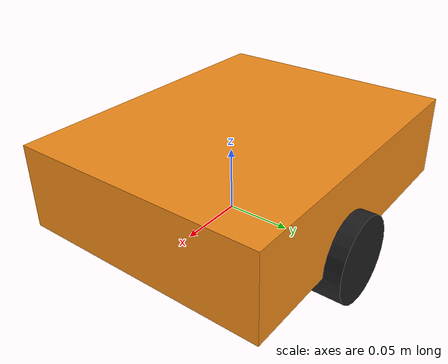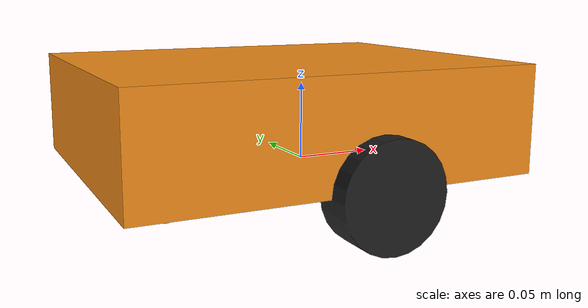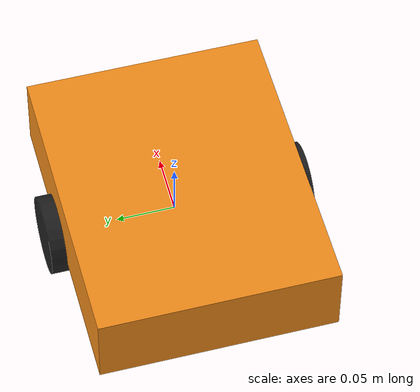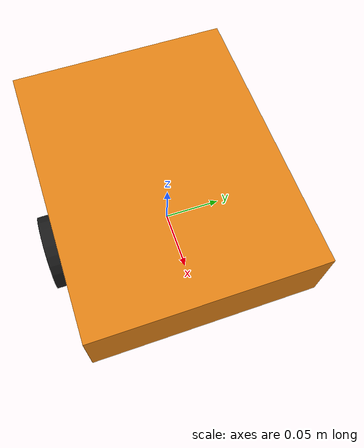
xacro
<?xml version="1.0"?>
<robot xmlns:xacro="http://www.ros.org/wiki/xacro" >

    <xacro:include filename="inertial_macros.xacro"/>

    <xacro:property name="chassis_length" value="0.25"/>
    <xacro:property name="chassis_width" value="0.2"/>
    <xacro:property name="chassis_height" value="0.06685"/>
    <xacro:property name="chassis_mass" value="2.0"/>
    <xacro:property name="wheel_radius" value="0.033"/>
    <xacro:property name="wheel_thickness" value="0.026"/>
    <xacro:property name="wheel_mass" value="0.05"/>
    <xacro:property name="wheel_offset_x" value="0.145"/>
    <xacro:property name="wheel_offset_y" value="0.1"/>
    <xacro:property name="wheel_offset_z" value="0"/>
    <xacro:property name="caster_wheel_radius" value="0.0125"/>
    <xacro:property name="caster_wheel_mass" value="0.01"/>
    <xacro:property name="caster_wheel_offset_x" value="0.05"/>
    <xacro:property name="caster_wheel_offset_z" value="${wheel_offset_z - wheel_radius + caster_wheel_radius}"/>
    <!-- BASE LINK -->

    <link name="base_link">

    </link>

    <!-- BASE_FOOTPRINT LINK -->

    <joint name="base_footprint_joint" type="fixed">
        <parent link="base_link"/>
        <child link="base_footprint"/>
        <origin xyz="0 0 0" rpy="0 0 0"/>
    </joint>

    <link name="base_footprint">
    </link>

    <!-- CHASSIS LINK -->

    <joint name="chassis_joint" type="fixed">
        <parent link="base_link"/>
        <child link="chassis_link"/>
        <origin xyz="-${wheel_offset_x} 0 ${wheel_offset_z}"/>
    </joint>

    <link name="chassis_link">
        <visual>
            <origin xyz="${chassis_length/2} 0 ${chassis_height/2}"/>
            <geometry>
                <box size="${chassis_length} ${chassis_width} ${chassis_height}"/>
            </geometry>
        </visual>
        <collision>
            <origin xyz="${chassis_length/2} 0 ${chassis_height/2}"/>
            <geometry>
                <box size="${chassis_length} ${chassis_width} ${chassis_height}"/>
            </geometry>
        </collision>

        <xacro:inertial_box mass="${chassis_mass}" x="${chassis_length}" y="${chassis_width}" z="${chassis_height}">
          <origin xyz="${chassis_length/2} 0 ${chassis_height/2}" rpy="0 0 0"/>
        </xacro:inertial_box>
    </link>
    <gazebo reference="chassis_link">
      <material>Gazebo/Orange</material>
    </gazebo>

    <!-- RIGHT WHEEL -->

    <joint name="right_wheel_joint" type="continuous">
        <parent link="base_link"/>
        <child link="right_wheel_link"/>
        <origin xyz="0 -0.1 ${wheel_offset_z}" rpy="${pi/2} 0 0" />
        <axis xyz="0 0 -1"/>
    </joint>
    <link name="right_wheel_link">
        <visual>
            <geometry>
                <cylinder radius="${wheel_radius}" length="${wheel_thickness}"/>
            </geometry>
        </visual>
        <collision>
            <geometry>
                <sphere radius="${wheel_radius}"/>
            </geometry>
        </collision>
        <xacro:inertial_cylinder mass="${wheel_mass}" length="${wheel_thickness}" radius="${wheel_radius}">
          <origin xyz="0 0 0" rpy="0 0 0"/>
        </xacro:inertial_cylinder>
    </link>
    <gazebo reference="right_wheel_link">
      <material>Gazebo/Black</material>
    </gazebo>

    <!-- LEFT WHEEL -->
    <joint name="left_wheel_joint" type="continuous">
        <parent link="base_link"/>
        <child link="left_wheel_link"/>
        <origin xyz="0 0.1 ${wheel_offset_z}" rpy="-${pi/2} 0 0" />
        <axis xyz="0 0 1"/>
    </joint>
    <link name="left_wheel_link">
        <visual>
            <geometry>
                <cylinder radius="${wheel_radius}" length="${wheel_thickness}"/>
            </geometry>
        </visual>
        <collision>
            <geometry>
                <sphere radius="${wheel_radius}"/>
            </geometry>
        </collision>
        <xacro:inertial_cylinder mass="${wheel_mass}" length="${wheel_thickness}" radius="${wheel_radius}">
            <origin xyz="0 0 0" rpy="0 0 0"/>
        </xacro:inertial_cylinder>
    </link>
    <gazebo reference="left_wheel_link">
      <material>Gazebo/Black</material>
    </gazebo>

    <!-- CASTER WHEEL LINK -->

    <joint name="caster_wheel_joint" type="fixed">
        <parent link="chassis_link"/>
        <child link="caster_wheel"/>
        <origin xyz="${caster_wheel_offset_x} 0 ${caster_wheel_offset_z}"/>
    </joint>

    <link name="caster_wheel">
        <visual>
            <geometry>
                <sphere radius="${caster_wheel_radius}"/>
            </geometry>
            <material name="white"/>
        </visual>
        <collision>
            <geometry>
                <sphere radius="${caster_wheel_radius}"/>
            </geometry>
        </collision>
        <xacro:inertial_sphere mass="${caster_wheel_mass}" radius="${caster_wheel_radius}">
            <origin xyz="0 0 0" rpy="0 0 0"/>
        </xacro:inertial_sphere>
    </link>

    <gazebo reference="caster_wheel">
        <material>Gazebo/White</material>
        <mu1 value="0.001"/>
        <mu2 value="0.001"/>
    </gazebo>

</robot>
